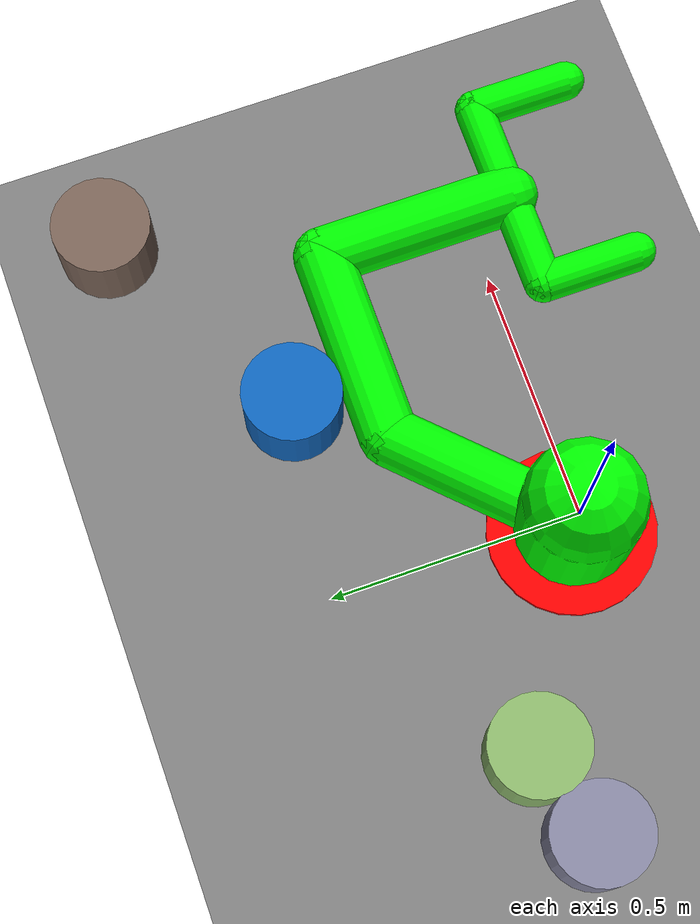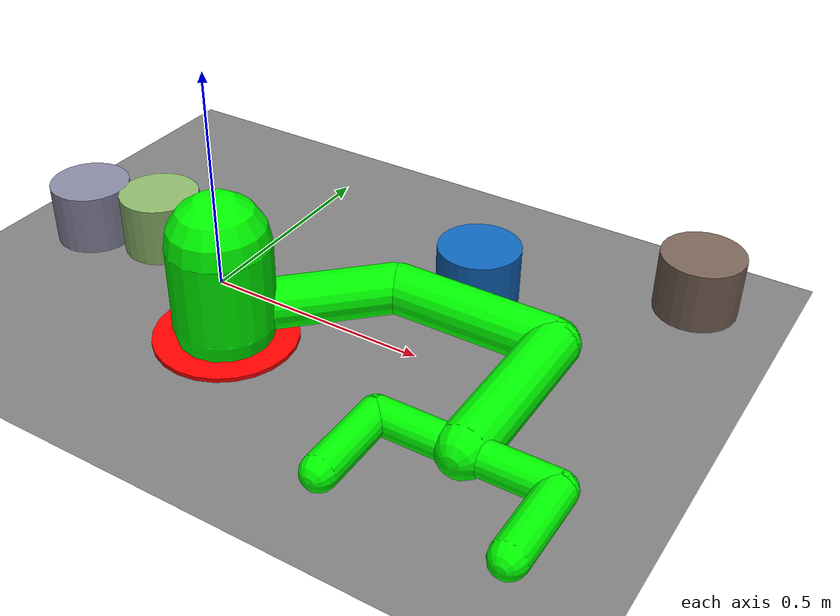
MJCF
<mujoco model="arm3d">
    <compiler angle="radian" coordinate="local" inertiafromgeom="true" />
    <option gravity="0 0 0" integrator="Euler" iterations="20" timestep="0.01" />

    <default>
        <joint armature="0.04" damping="1" limited="true" />
        <geom conaffinity="1" condim="1" contype="1" density="300" friction=".8 .1 .1" margin="0.002" />
    </default>

    <worldbody>
        <light diffuse=".5 .5 .5" dir="0 0 -1" pos="0 0 3" />
        <geom conaffinity="1" contype="1" pos="0 0.5 -0.15" size="2 2 0.1" type="plane" />

        <body name="palm" pos="0 0 0">
            <geom fromto="0 0 -0.1 0 0 0.1" rgba="0. 1. 0. 1" size="0.12" type="capsule" />
            <body axisangle="0 0 1 0.785" name="proximal_1" pos="0 0 -0.075">
                <joint axis="0 0 1" damping="1.0" name="proximal_j_1" pos="0 0 0" range="-2.5 2.5" type="hinge" />
                <geom conaffinity="1" contype="1" fromto="0 0 0 0.4 0 0" rgba="0. 1. 0. 1" size="0.06" type="capsule" />
                <body axisangle="0 0 1 -0.785" name="distal_1" pos="0.4 0 0">
                    <joint axis="0 0 1" damping="1.0" name="distal_j_1" pos="0 0 0" range="-2.3213 2.3" type="hinge" />
                    <geom conaffinity="1" contype="1" fromto="0 0 0 0.4 0 0" rgba="0. 1. 0. 1" size="0.06" type="capsule" />
                    <body axisangle="0 0 1 -1.57" name="distal_2" pos="0.4 0 0">
                        <joint axis="0 0 1" damping="1.0" name="distal_j_2" pos="0 0 0" range="-2.3213 2.3" type="hinge" />
                        <geom conaffinity="1" contype="1" fromto="0 0 0 0.4 0 0" rgba="0. 1. 0. 1" size="0.06" type="capsule" />
                        <body name="distal_4" pos="0.4 0 0">
                            <site name="tip arml" pos="0.1 -0.2 0" size="0.01" />
                            <site name="tip armr" pos="0.1 0.2 0" size="0.01" />

                            <geom conaffinity="1" contype="1" fromto="0 -0.2 0 0 0.2 0" rgba="0. 1. 0. 1" size="0.04" type="capsule" />
                            <geom conaffinity="1" contype="1" fromto="0 -0.2 0 0.2 -0.2 0" rgba="0. 1. 0. 1" size="0.04" type="capsule" />
                            <geom conaffinity="1" contype="1" fromto="0 0.2 0 0.2 0.2 0" rgba="0. 1. 0. 1" size="0.04" type="capsule" />
                        </body>
                    </body>
                </body>
            </body>
        </body>

        <body name="object" pos="0 0 -0.1">

            <geom conaffinity="1" contype="1" density="0.00001" rgba="1. 1. 1. 1" size="0.1 0.1 0.1" type="cylinder" />
            <joint axis="0 1 0" damping="0.5" name="obj_slidey" pos="0.025 0.025 0.025" range="-10.3213 10.3" type="slide" />
            <joint axis="1 0 0" damping="0.5" name="obj_slidex" pos="0.025 0.025 0.025" range="-10.3213 10.3" type="slide" />
        </body>

        <body name="goal" pos="0 0 -0.145">

            <geom conaffinity="0" contype="0" density="0.00001" rgba="1. 0. 0. 1" size="0.17 0.005 0.2" type="cylinder" />
            <joint axis="0 1 0" damping="0.5" name="goal_slidey" pos="0 0 0" range="-10.3213 10.3" type="slide" />
            <joint axis="1 0 0" damping="0.5" name="goal_slidex" pos="0 0 0" range="-10.3213 10.3" type="slide" />
        </body>

    <geom conaffinity="0" contype="0" density="0.00001" name="object0" pos="-0.384949 0.226851 -0.1" rgba="0.551315 0.719469 0.423106 1" size="0.1 0.1 0.1" type="cylinder" /><geom conaffinity="0" contype="0" density="0.00001" name="object1" pos="0.865376 0.684830 -0.1" rgba="0.480932 0.392118 0.343178 1" size="0.1 0.1 0.1" type="cylinder" /><geom conaffinity="0" contype="0" density="0.00001" name="object2" pos="0.412289 0.438572 -0.1" rgba="0.059678 0.398044 0.737995 1" size="0.1 0.1 0.1" type="cylinder" /><geom conaffinity="0" contype="0" density="0.00001" name="object3" pos="-0.571515 0.175452 -0.1" rgba="0.531551 0.531828 0.634401 1" size="0.1 0.1 0.1" type="cylinder" /></worldbody>

    <actuator>
        <motor ctrllimited="true" ctrlrange="-3 3" joint="proximal_j_1" />
        <motor ctrllimited="true" ctrlrange="-3 3" joint="distal_j_1" />
        <motor ctrllimited="true" ctrlrange="-3 3" joint="distal_j_2" />

    </actuator>
</mujoco>
